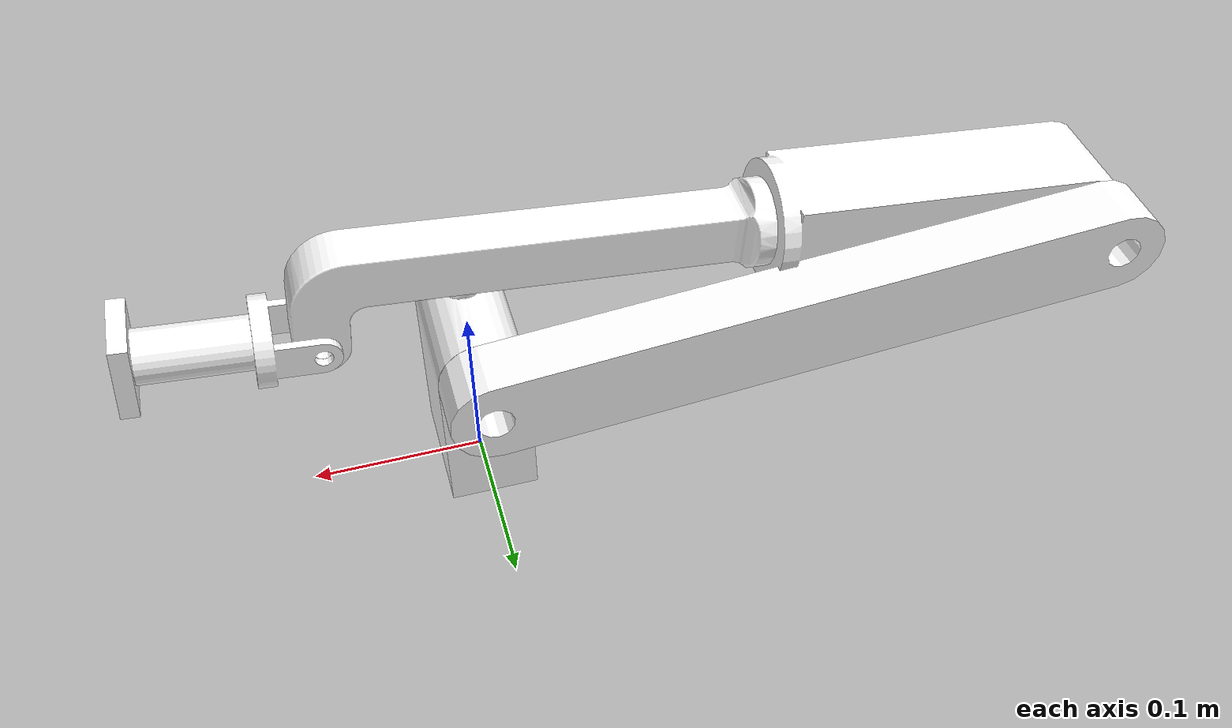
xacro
<?xml version="1.0"?>
<robot xmlns:xacro="http://www.ros.org/wiki/xacro" name="miniarm">
    <xacro:arg name="initial_positions_file" default="initial_positions.yaml" />

    <!-- Import miniarm urdf file -->
    <xacro:include filename="$(find miniarm)/urdf/miniarm.urdf" />

    <!-- Import control_xacro -->
    <xacro:include filename="$(find miniarm)/config/miniarm.ros2_control.xacro" />

    <xacro:include filename="$(find miniarm)/config/gazebo_plugins.xacro" />

    <xacro:miniarm_ros2_control name="miniarm" initial_positions_file="$(find miniarm)/config/$(arg initial_positions_file)"/>

</robot>

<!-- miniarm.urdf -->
<robot
  name="miniarm">
  <link
    name="base_link">
    <inertial>
      <origin
        xyz="-0.029123 -0.033706 0.005"
        rpy="0 0 0" />
      <mass
        value="0.029196" />
      <inertia
        ixx="2.633E-05"
        ixy="-2.4057E-05"
        ixz="1.1298E-21"
        iyy="5.0719E-05"
        iyz="9.4342E-23"
        izz="7.6562E-05" />
    </inertial>
    <visual>
      <origin
        xyz="0 0 0"
        rpy="0 0 0" />
      <geometry>
        <mesh
          filename="file://$(find miniarm)/meshes/base_link.STL" />
      </geometry>
      <material
        name="">
        <color
          rgba="1 1 1 1" />
      </material>
    </visual>
    <collision>
      <origin
        xyz="0 0 0"
        rpy="0 0 0" />
      <geometry>
        <mesh
          filename="file://$(find miniarm)/meshes/base_link.STL" />
      </geometry>
    </collision>
  </link>
  <link
    name="yaw_Link">
    <inertial>
      <origin
        xyz="6.261E-09 0.012156 0.053426"
        rpy="0 0 0" />
      <mass
        value="0.35416" />
      <inertia
        ixx="0.00052105"
        ixy="5.0927E-11"
        ixz="-7.5303E-12"
        iyy="0.00043693"
        iyz="4.6383E-07"
        izz="0.00024205" />
    </inertial>
    <visual>
      <origin
        xyz="0 0 0"
        rpy="0 0 0" />
      <geometry>
        <mesh
          filename="file://$(find miniarm)/meshes/yaw_Link.STL" />
      </geometry>
      <material
        name="">
        <color
          rgba="1 1 1 1" />
      </material>
    </visual>
    <collision>
      <origin
        xyz="0 0 0"
        rpy="0 0 0" />
      <geometry>
        <mesh
          filename="file://$(find miniarm)/meshes/yaw_Link.STL" />
      </geometry>
    </collision>
  </link>
  <joint
    name="yaw_link"
    type="revolute">
    <origin
      xyz="0 0 0.01"
      rpy="0 0 0" />
    <parent
      link="base_link" />
    <child
      link="yaw_Link" />
    <axis
      xyz="0 0 1" />
    <limit
      lower="-1.57"
      upper="1.57"
      effort="0"
      velocity="0" />
  </joint>
  <link
    name="P1_Link">
    <inertial>
      <origin
        xyz="0.18397 0 0.056283"
        rpy="0 0 0" />
      <mass
        value="0.68023" />
      <inertia
        ixx="0.00023225"
        ixy="6.1316E-19"
        ixz="0.00042211"
        iyy="0.0087926"
        iyz="-3.659E-20"
        izz="0.0088447" />
    </inertial>
    <visual>
      <origin
        xyz="0 0 0"
        rpy="0 0 0" />
      <geometry>
        <mesh
          filename="file://$(find miniarm)/meshes/P1_Link.STL" />
      </geometry>
      <material
        name="">
        <color
          rgba="1 1 1 1" />
      </material>
    </visual>
    <collision>
      <origin
        xyz="0 0 0"
        rpy="0 0 0" />
      <geometry>
        <mesh
          filename="file://$(find miniarm)/meshes/P1_Link.STL" />
      </geometry>
    </collision>
  </link>
  <joint
    name="p1_link"
    type="revolute">
    <origin
      xyz="0 0 0.091"
      rpy="1.5751 -0.087162 3.0926" />
    <parent
      link="yaw_Link" />
    <child
      link="P1_Link" />
    <axis
      xyz="0.048837 0 0.99881" />
    <limit
      lower="0"
      upper="2"
      effort="0"
      velocity="0" />
  </joint>
  <link
    name="P2_Link">
    <inertial>
      <origin
        xyz="0.093579 0 6.9389E-18"
        rpy="0 0 0" />
      <mass
        value="0.61758" />
      <inertia
        ixx="0.00031766"
        ixy="8.8091E-20"
        ixz="-7.147E-20"
        iyy="0.0023843"
        iyz="-1.4344E-20"
        izz="0.002331" />
    </inertial>
    <visual>
      <origin
        xyz="0 0 0"
        rpy="0 0 0" />
      <geometry>
        <mesh
          filename="file://$(find miniarm)/meshes/P2_Link.STL" />
      </geometry>
      <material
        name="">
        <color
          rgba="1 1 1 1" />
      </material>
    </visual>
    <collision>
      <origin
        xyz="0 0 0"
        rpy="0 0 0" />
      <geometry>
        <mesh
          filename="file://$(find miniarm)/meshes/P2_Link.STL" />
      </geometry>
    </collision>
  </link>
  <joint
    name="p2_link"
    type="revolute">
    <origin
      xyz="0.36243 0 0"
      rpy="0.0084903 -0.048113 2.9669" />
    <parent
      link="P1_Link" />
    <child
      link="P2_Link" />
    <axis
      xyz="0 0 1" />
    <limit
      lower="-2"
      upper="0"
      effort="0"
      velocity="0" />
  </joint>
  <link
    name="Roll_Link">
    <inertial>
      <origin
        xyz="-0.0042914 1.4286E-05 0.13539"
        rpy="0 0 0" />
      <mass
        value="0.27489" />
      <inertia
        ixx="0.0018909"
        ixy="1.3975E-07"
        ixz="0.0001294"
        iyy="0.0019259"
        iyz="-4.3042E-07"
        izz="8.0038E-05" />
    </inertial>
    <visual>
      <origin
        xyz="0 0 0"
        rpy="0 0 0" />
      <geometry>
        <mesh
          filename="file://$(find miniarm)/meshes/Roll_Link.STL" />
      </geometry>
      <material
        name="">
        <color
          rgba="1 1 1 1" />
      </material>
    </visual>
    <collision>
      <origin
        xyz="0 0 0"
        rpy="0 0 0" />
      <geometry>
        <mesh
          filename="file://$(find miniarm)/meshes/Roll_Link.STL" />
      </geometry>
    </collision>
  </link>
  <joint
    name="roll_link"
    type="revolute">
    <origin
      xyz="0.194 0 0"
      rpy="-1.5708 0 -1.5708" />
    <parent
      link="P2_Link" />
    <child
      link="Roll_Link" />
    <axis
      xyz="0 0 1" />
    <limit
      lower="-1.57"
      upper="1.57"
      effort="0"
      velocity="0" />
  </joint>
  <link
    name="Minip_Link">
    <inertial>
      <origin
        xyz="0.025369 2.7756E-17 -6.9389E-18"
        rpy="0 0 0" />
      <mass
        value="0.02542" />
      <inertia
        ixx="8.1208E-06"
        ixy="8.9997E-22"
        ixz="-2.9573E-21"
        iyy="7.4031E-06"
        iyz="-4.8817E-23"
        izz="5.8203E-06" />
    </inertial>
    <visual>
      <origin
        xyz="0 0 0"
        rpy="0 0 0" />
      <geometry>
        <mesh
          filename="file://$(find miniarm)/meshes/Minip_Link.STL" />
      </geometry>
      <material
        name="">
        <color
          rgba="1 1 1 1" />
      </material>
    </visual>
    <collision>
      <origin
        xyz="0 0 0"
        rpy="0 0 0" />
      <geometry>
        <mesh
          filename="file://$(find miniarm)/meshes/Minip_Link.STL" />
      </geometry>
    </collision>
  </link>
  <joint
    name="minip_link"
    type="revolute">
    <origin
      xyz="-0.042 0 0.245"
      rpy="1.5708 -1.5708 0" />
    <parent
      link="Roll_Link" />
    <child
      link="Minip_Link" />
    <axis
      xyz="0 0 -1" />
    <limit
      lower="-2"
      upper="0"
      effort="0"
      velocity="0" />
  </joint>
  <link
    name="Minir_Link">
    <inertial>
      <origin
        xyz="-1.3878E-17 1.3878E-17 0.040916"
        rpy="0 0 0" />
      <mass
        value="0.061635" />
      <inertia
        ixx="3.436E-05"
        ixy="2.978E-22"
        ixz="-4.2881E-21"
        iyy="3.4758E-05"
        iyz="-2.1346E-21"
        izz="1.0943E-05" />
    </inertial>
    <visual>
      <origin
        xyz="0 0 0"
        rpy="0 0 0" />
      <geometry>
        <mesh
          filename="file://$(find miniarm)/meshes/Minir_Link.STL" />
      </geometry>
      <material
        name="">
        <color
          rgba="1 1 1 1" />
      </material>
    </visual>
    <collision>
      <origin
        xyz="0 0 0"
        rpy="0 0 0" />
      <geometry>
        <mesh
          filename="file://$(find miniarm)/meshes/Minir_Link.STL" />
      </geometry>
    </collision>
  </link>
  <joint
    name="minir_link"
    type="revolute">
    <origin
      xyz="0.035 0 0"
      rpy="1.5708 0 1.5708" />
    <parent
      link="Minip_Link" />
    <child
      link="Minir_Link" />
    <axis
      xyz="0 0 -1" />
    <limit
      lower="0"
      upper="6.28"
      effort="0"
      velocity="0" />
  </joint>
</robot>

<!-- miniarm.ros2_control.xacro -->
<robot xmlns:xacro="http://www.ros.org/wiki/xacro">
    <xacro:macro name="miniarm_ros2_control" params="name initial_positions_file">
        <xacro:property name="initial_positions" value="${xacro.load_yaml(initial_positions_file)['initial_positions']}"/>
        <link name="world"/>
        <joint name="fixed" type="fixed">
            <parent link="world"/>
            <child link="base_link"/>
        </joint>

        <ros2_control name="GazeboSystem" type="system">
            <hardware>
              <plugin>gazebo_ros2_control/GazeboSystem</plugin>
            </hardware>

            <joint name="yaw_link">
                <command_interface name="position"/>
                <state_interface name="position">
                  <param name="initial_value">${initial_positions['yaw_link']}</param>
                </state_interface>
                <state_interface name="velocity"/>
            </joint>
            <joint name="p1_link">
                <command_interface name="position"/>
                <state_interface name="position">
                  <param name="initial_value">${initial_positions['p1_link']}</param>
                </state_interface>
                <state_interface name="velocity"/>
            </joint>
            <joint name="p2_link">
                <command_interface name="position"/>
                <state_interface name="position">
                  <param name="initial_value">${initial_positions['p2_link']}</param>
                </state_interface>
                <state_interface name="velocity"/>
            </joint>
            <joint name="roll_link">
                <command_interface name="position"/>
                <state_interface name="position">
                  <param name="initial_value">${initial_positions['roll_link']}</param>
                </state_interface>
                <state_interface name="velocity"/>
            </joint>
            <joint name="minip_link">
                <command_interface name="position"/>
                <state_interface name="position">
                  <param name="initial_value">${initial_positions['minip_link']}</param>
                </state_interface>
                <state_interface name="velocity"/>
            </joint>
            <joint name="minir_link">
                <command_interface name="position"/>
                <state_interface name="position">
                  <param name="initial_value">${initial_positions['minir_link']}</param>
                </state_interface>
                <state_interface name="velocity"/>
            </joint>

        </ros2_control>
        <gazebo>
          <plugin filename="libgazebo_ros2_control.so" name="gazebo_ros2_control">
              <parameters>$(find miniarm)/config/ros2_controllers.yaml</parameters>
              <robot_param>robot_description</robot_param>
              <robot_param_node>robot_state_publisher</robot_param_node>
          </plugin>
        </gazebo>

    </xacro:macro>
</robot>
